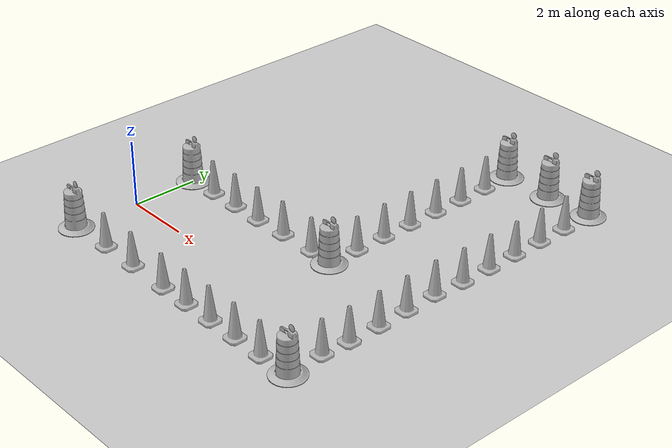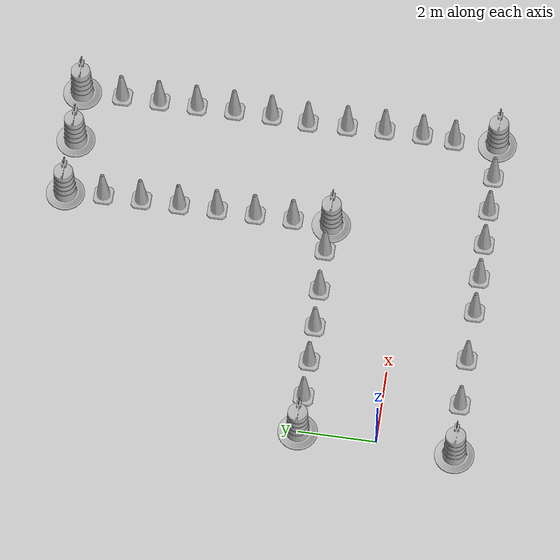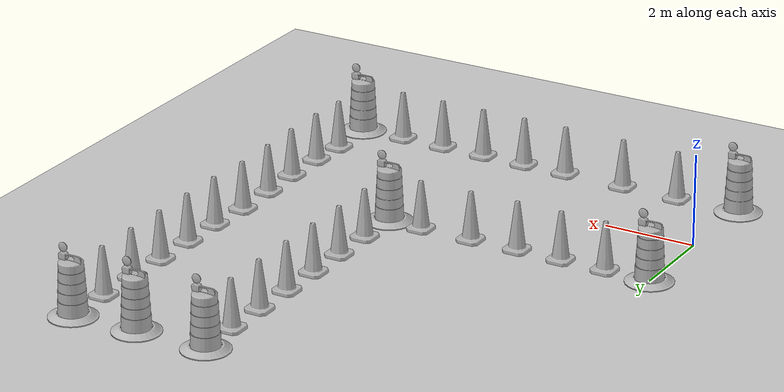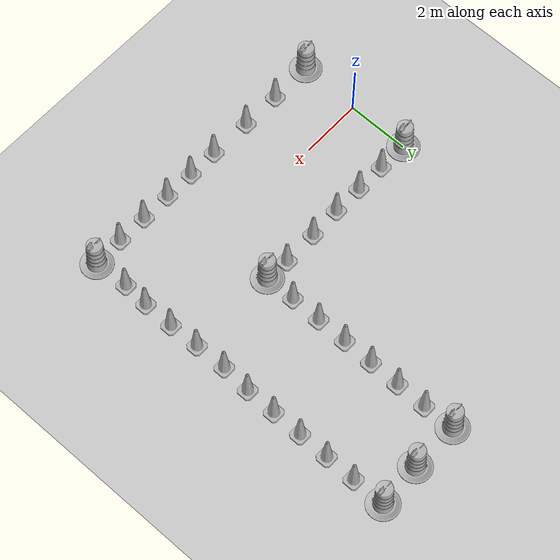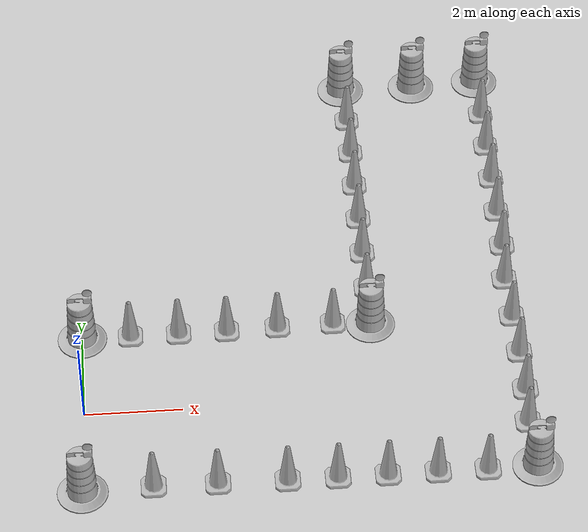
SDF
<sdf version="1.7">
 <world name="default">
  <light name="sun" type="directional">
   <pose>0 0 10 0 -0 0</pose>
   <diffuse>0.8 0.8 0.8 1</diffuse>
   <specular>0.2 0.2 0.2 1</specular>
   <attenuation>
    <range>1000</range>
    <constant>0.9</constant>
    <linear>0.01</linear>
    <quadratic>0.001</quadratic>
   </attenuation>
   <direction>-0.5 0.1 -0.9</direction>
   <spot><inner_angle>0</inner_angle><outer_angle>0</outer_angle><falloff>0</falloff></spot>
  </light>
  <model name="ground_plane">
   <static>1</static>
   <link name="link">
    <collision name="collision">
     <geometry><plane><normal>0 0 1</normal><size>100 100</size></plane></geometry>
     <surface>
      <contact><collide_bitmask>65535</collide_bitmask></contact>
      <friction><ode><mu>100</mu><mu2>50</mu2></ode></friction>
     </surface>
    </collision>
    <visual name="visual">
     <cast_shadows>0</cast_shadows>
     <geometry><plane><normal>0 0 1</normal><size>100 100</size></plane></geometry>
     <material>
      <script><uri>file://media/materials/scripts/gazebo.material</uri><name>Gazebo/Grey</name></script>
     </material>
    </visual>
   </link>
  </model>
  <gravity>0 0 -9.8</gravity>
  <magnetic_field>6e-06 2.3e-05 -4.2e-05</magnetic_field>
  <atmosphere type="adiabatic"/>
  <physics type="ode">
   <max_step_size>0.001</max_step_size>
   <real_time_factor>1</real_time_factor>
   <real_time_update_rate>1000</real_time_update_rate>
  </physics>
  <scene><ambient>0.4 0.4 0.4 1</ambient><background>0.7 0.7 0.7 1</background><shadows>1</shadows></scene>
  <spherical_coordinates>
   <surface_model>EARTH_WGS84</surface_model>
   <latitude_deg>0</latitude_deg>
   <longitude_deg>0</longitude_deg>
   <elevation>0</elevation>
   <heading_deg>0</heading_deg>
  </spherical_coordinates>
  <model name="Construction Barrel">
   <link name="link">
    <inertial>
     <pose>0 0 0.4 0 -0 0</pose>
     <mass>500</mass>
     <inertia><ixx>51.2096</ixx><iyy>51.2096</iyy><izz>25</izz><ixy>0</ixy><ixz>0</ixz><iyz>0</iyz></inertia>
    </inertial>
    <collision name="collision">
     <geometry><mesh><uri>model://construction_barrel/meshes/construction_barrel.dae</uri></mesh></geometry>
    </collision>
    <visual name="visual">
     <geometry><mesh><uri>model://construction_barrel/meshes/construction_barrel.dae</uri></mesh></geometry>
    </visual>
   </link>
   <pose>-0.069041 -1.99433 -0 0 0 -3.9e-05</pose>
  </model>
  <model name="Construction Barrel_clone">
   <link name="link">
    <inertial>
     <pose>0 0 0.4 0 -0 0</pose>
     <mass>500</mass>
     <inertia><ixx>51.2096</ixx><iyy>51.2096</iyy><izz>25</izz><ixy>0</ixy><ixz>0</ixz><iyz>0</iyz></inertia>
    </inertial>
    <collision name="collision">
     <geometry><mesh><uri>model://construction_barrel/meshes/construction_barrel.dae</uri></mesh></geometry>
    </collision>
    <visual name="visual">
     <geometry><mesh><uri>model://construction_barrel/meshes/construction_barrel.dae</uri></mesh></geometry>
    </visual>
   </link>
   <pose>0.000906 2.00754 -1e-06 -3e-06 -1e-06 -3.7e-05</pose>
  </model>
  <model name="Construction Barrel_clone_0">
   <link name="link">
    <inertial>
     <pose>0 0 0.4 0 -0 0</pose>
     <mass>500</mass>
     <inertia><ixx>51.2096</ixx><iyy>51.2096</iyy><izz>25</izz><ixy>0</ixy><ixz>0</ixz><iyz>0</iyz></inertia>
    </inertial>
    <collision name="collision">
     <geometry><mesh><uri>model://construction_barrel/meshes/construction_barrel.dae</uri></mesh></geometry>
    </collision>
    <visual name="visual">
     <geometry><mesh><uri>model://construction_barrel/meshes/construction_barrel.dae</uri></mesh></geometry>
    </visual>
   </link>
   <pose>9.00136 -1.9758 -0 0 0 -4.4e-05</pose>
  </model>
  <model name="Construction Barrel_clone_1">
   <link name="link">
    <inertial>
     <pose>0 0 0.4 0 -0 0</pose>
     <mass>500</mass>
     <inertia><ixx>51.2096</ixx><iyy>51.2096</iyy><izz>25</izz><ixy>0</ixy><ixz>0</ixz><iyz>0</iyz></inertia>
    </inertial>
    <collision name="collision">
     <geometry><mesh><uri>model://construction_barrel/meshes/construction_barrel.dae</uri></mesh></geometry>
    </collision>
    <visual name="visual">
     <geometry><mesh><uri>model://construction_barrel/meshes/construction_barrel.dae</uri></mesh></geometry>
    </visual>
   </link>
   <pose>5.99992 1.99992 -0 0 0 -4e-05</pose>
  </model>
  <model name="Construction Barrel_clone_2">
   <link name="link">
    <inertial>
     <pose>0 0 0.4 0 -0 0</pose>
     <mass>500</mass>
     <inertia><ixx>51.2096</ixx><iyy>51.2096</iyy><izz>25</izz><ixy>0</ixy><ixz>0</ixz><iyz>0</iyz></inertia>
    </inertial>
    <collision name="collision">
     <geometry><mesh><uri>model://construction_barrel/meshes/construction_barrel.dae</uri></mesh></geometry>
    </collision>
    <visual name="visual">
     <geometry><mesh><uri>model://construction_barrel/meshes/construction_barrel.dae</uri></mesh></geometry>
    </visual>
   </link>
   <pose>5.93922 9.0032 -3e-06 0 -1.2e-05 -6.1e-05</pose>
  </model>
  <model name="Construction Barrel_clone_3">
   <link name="link">
    <inertial>
     <pose>0 0 0.4 0 -0 0</pose>
     <mass>500</mass>
     <inertia><ixx>51.2096</ixx><iyy>51.2096</iyy><izz>25</izz><ixy>0</ixy><ixz>0</ixz><iyz>0</iyz></inertia>
    </inertial>
    <collision name="collision">
     <geometry><mesh><uri>model://construction_barrel/meshes/construction_barrel.dae</uri></mesh></geometry>
    </collision>
    <visual name="visual">
     <geometry><mesh><uri>model://construction_barrel/meshes/construction_barrel.dae</uri></mesh></geometry>
    </visual>
   </link>
   <pose>8.97662 9.07061 -0 0 0 -3.7e-05</pose>
  </model>
  <model name="Construction Barrel_clone_4">
   <link name="link">
    <inertial>
     <pose>0 0 0.4 0 -0 0</pose>
     <mass>500</mass>
     <inertia><ixx>51.2096</ixx><iyy>51.2096</iyy><izz>25</izz><ixy>0</ixy><ixz>0</ixz><iyz>0</iyz></inertia>
    </inertial>
    <collision name="collision">
     <geometry><mesh><uri>model://construction_barrel/meshes/construction_barrel.dae</uri></mesh></geometry>
    </collision>
    <visual name="visual">
     <geometry><mesh><uri>model://construction_barrel/meshes/construction_barrel.dae</uri></mesh></geometry>
    </visual>
   </link>
   <pose>7.53302 9.00088 -0 0 0 -4.2e-05</pose>
  </model>
  <model name="Construction Cone">
   <link name="link">
    <collision name="collision">
     <geometry>
      <mesh><scale>10 10 10</scale><uri>model://construction_cone/meshes/construction_cone.dae</uri></mesh>
     </geometry>
    </collision>
    <visual name="visual">
     <geometry>
      <mesh><scale>10 10 10</scale><uri>model://construction_cone/meshes/construction_cone.dae</uri></mesh>
     </geometry>
    </visual>
    <inertial>
     <inertia><ixx>1</ixx><ixy>0</ixy><ixz>0</ixz><iyy>1</iyy><iyz>0</iyz><izz>1</izz></inertia>
     <mass>1</mass>
    </inertial>
   </link>
   <pose>1.33825 -1.96072 -0 0 -1e-06 0</pose>
  </model>
  <model name="Construction Cone_clone">
   <link name="link">
    <collision name="collision">
     <geometry>
      <mesh><scale>10 10 10</scale><uri>model://construction_cone/meshes/construction_cone.dae</uri></mesh>
     </geometry>
    </collision>
    <visual name="visual">
     <geometry>
      <mesh><scale>10 10 10</scale><uri>model://construction_cone/meshes/construction_cone.dae</uri></mesh>
     </geometry>
    </visual>
    <inertial>
     <inertia><ixx>1</ixx><ixy>0</ixy><ixz>0</ixz><iyy>1</iyy><iyz>0</iyz><izz>1</izz></inertia>
     <mass>1</mass>
    </inertial>
   </link>
   <pose>2.61642 -1.97558 -0 0 -1e-06 0</pose>
  </model>
  <model name="Construction Cone_clone_0">
   <link name="link">
    <collision name="collision">
     <geometry>
      <mesh><scale>10 10 10</scale><uri>model://construction_cone/meshes/construction_cone.dae</uri></mesh>
     </geometry>
    </collision>
    <visual name="visual">
     <geometry>
      <mesh><scale>10 10 10</scale><uri>model://construction_cone/meshes/construction_cone.dae</uri></mesh>
     </geometry>
    </visual>
    <inertial>
     <inertia><ixx>1</ixx><ixy>0</ixy><ixz>0</ixz><iyy>1</iyy><iyz>0</iyz><izz>1</izz></inertia>
     <mass>1</mass>
    </inertial>
   </link>
   <pose>4 -2 -0 0 -0 0</pose>
  </model>
  <model name="Construction Cone_clone_1">
   <link name="link">
    <collision name="collision">
     <geometry>
      <mesh><scale>10 10 10</scale><uri>model://construction_cone/meshes/construction_cone.dae</uri></mesh>
     </geometry>
    </collision>
    <visual name="visual">
     <geometry>
      <mesh><scale>10 10 10</scale><uri>model://construction_cone/meshes/construction_cone.dae</uri></mesh>
     </geometry>
    </visual>
    <inertial>
     <inertia><ixx>1</ixx><ixy>0</ixy><ixz>0</ixz><iyy>1</iyy><iyz>0</iyz><izz>1</izz></inertia>
     <mass>1</mass>
    </inertial>
   </link>
   <pose>5 -2 -0 0 -0 0</pose>
  </model>
  <model name="Construction Cone_clone_2">
   <link name="link">
    <collision name="collision">
     <geometry>
      <mesh><scale>10 10 10</scale><uri>model://construction_cone/meshes/construction_cone.dae</uri></mesh>
     </geometry>
    </collision>
    <visual name="visual">
     <geometry>
      <mesh><scale>10 10 10</scale><uri>model://construction_cone/meshes/construction_cone.dae</uri></mesh>
     </geometry>
    </visual>
    <inertial>
     <inertia><ixx>1</ixx><ixy>0</ixy><ixz>0</ixz><iyy>1</iyy><iyz>0</iyz><izz>1</izz></inertia>
     <mass>1</mass>
    </inertial>
   </link>
   <pose>6 -2 -0 0 -1e-06 0</pose>
  </model>
  <model name="Construction Cone_clone_3">
   <link name="link">
    <collision name="collision">
     <geometry>
      <mesh><scale>10 10 10</scale><uri>model://construction_cone/meshes/construction_cone.dae</uri></mesh>
     </geometry>
    </collision>
    <visual name="visual">
     <geometry>
      <mesh><scale>10 10 10</scale><uri>model://construction_cone/meshes/construction_cone.dae</uri></mesh>
     </geometry>
    </visual>
    <inertial>
     <inertia><ixx>1</ixx><ixy>0</ixy><ixz>0</ixz><iyy>1</iyy><iyz>0</iyz><izz>1</izz></inertia>
     <mass>1</mass>
    </inertial>
   </link>
   <pose>7 -2 -0 0 -1e-06 0</pose>
  </model>
  <model name="Construction Cone_clone_4">
   <link name="link">
    <collision name="collision">
     <geometry>
      <mesh><scale>10 10 10</scale><uri>model://construction_cone/meshes/construction_cone.dae</uri></mesh>
     </geometry>
    </collision>
    <visual name="visual">
     <geometry>
      <mesh><scale>10 10 10</scale><uri>model://construction_cone/meshes/construction_cone.dae</uri></mesh>
     </geometry>
    </visual>
    <inertial>
     <inertia><ixx>1</ixx><ixy>0</ixy><ixz>0</ixz><iyy>1</iyy><iyz>0</iyz><izz>1</izz></inertia>
     <mass>1</mass>
    </inertial>
   </link>
   <pose>8 -2 -0 1e-06 -0 0</pose>
  </model>
  <model name="Construction Cone_clone_5">
   <link name="link">
    <collision name="collision">
     <geometry>
      <mesh><scale>10 10 10</scale><uri>model://construction_cone/meshes/construction_cone.dae</uri></mesh>
     </geometry>
    </collision>
    <visual name="visual">
     <geometry>
      <mesh><scale>10 10 10</scale><uri>model://construction_cone/meshes/construction_cone.dae</uri></mesh>
     </geometry>
    </visual>
    <inertial>
     <inertia><ixx>1</ixx><ixy>0</ixy><ixz>0</ixz><iyy>1</iyy><iyz>0</iyz><izz>1</izz></inertia>
     <mass>1</mass>
    </inertial>
   </link>
   <pose>1 2 -8e-06 1e-06 -0 0</pose>
  </model>
  <model name="Construction Cone_clone_6">
   <link name="link">
    <collision name="collision">
     <geometry>
      <mesh><scale>10 10 10</scale><uri>model://construction_cone/meshes/construction_cone.dae</uri></mesh>
     </geometry>
    </collision>
    <visual name="visual">
     <geometry>
      <mesh><scale>10 10 10</scale><uri>model://construction_cone/meshes/construction_cone.dae</uri></mesh>
     </geometry>
    </visual>
    <inertial>
     <inertia><ixx>1</ixx><ixy>0</ixy><ixz>0</ixz><iyy>1</iyy><iyz>0</iyz><izz>1</izz></inertia>
     <mass>1</mass>
    </inertial>
   </link>
   <pose>2 2 -0 0 -1e-06 0</pose>
  </model>
  <model name="Construction Cone_clone_7">
   <link name="link">
    <collision name="collision">
     <geometry>
      <mesh><scale>10 10 10</scale><uri>model://construction_cone/meshes/construction_cone.dae</uri></mesh>
     </geometry>
    </collision>
    <visual name="visual">
     <geometry>
      <mesh><scale>10 10 10</scale><uri>model://construction_cone/meshes/construction_cone.dae</uri></mesh>
     </geometry>
    </visual>
    <inertial>
     <inertia><ixx>1</ixx><ixy>0</ixy><ixz>0</ixz><iyy>1</iyy><iyz>0</iyz><izz>1</izz></inertia>
     <mass>1</mass>
    </inertial>
   </link>
   <pose>3 2 -0 0 -0 0</pose>
  </model>
  <model name="Construction Cone_clone_8">
   <link name="link">
    <collision name="collision">
     <geometry>
      <mesh><scale>10 10 10</scale><uri>model://construction_cone/meshes/construction_cone.dae</uri></mesh>
     </geometry>
    </collision>
    <visual name="visual">
     <geometry>
      <mesh><scale>10 10 10</scale><uri>model://construction_cone/meshes/construction_cone.dae</uri></mesh>
     </geometry>
    </visual>
    <inertial>
     <inertia><ixx>1</ixx><ixy>0</ixy><ixz>0</ixz><iyy>1</iyy><iyz>0</iyz><izz>1</izz></inertia>
     <mass>1</mass>
    </inertial>
   </link>
   <pose>4.0574 2.03187 -0 0 -1e-06 0</pose>
  </model>
  <model name="Construction Cone_clone_9">
   <link name="link">
    <collision name="collision">
     <geometry>
      <mesh><scale>10 10 10</scale><uri>model://construction_cone/meshes/construction_cone.dae</uri></mesh>
     </geometry>
    </collision>
    <visual name="visual">
     <geometry>
      <mesh><scale>10 10 10</scale><uri>model://construction_cone/meshes/construction_cone.dae</uri></mesh>
     </geometry>
    </visual>
    <inertial>
     <inertia><ixx>1</ixx><ixy>0</ixy><ixz>0</ixz><iyy>1</iyy><iyz>0</iyz><izz>1</izz></inertia>
     <mass>1</mass>
    </inertial>
   </link>
   <pose>5.21621 2.0547 -0 0 -1e-06 0</pose>
  </model>
  <model name="Construction Cone_clone_10">
   <link name="link">
    <collision name="collision">
     <geometry>
      <mesh><scale>10 10 10</scale><uri>model://construction_cone/meshes/construction_cone.dae</uri></mesh>
     </geometry>
    </collision>
    <visual name="visual">
     <geometry>
      <mesh><scale>10 10 10</scale><uri>model://construction_cone/meshes/construction_cone.dae</uri></mesh>
     </geometry>
    </visual>
    <inertial>
     <inertia><ixx>1</ixx><ixy>0</ixy><ixz>0</ixz><iyy>1</iyy><iyz>0</iyz><izz>1</izz></inertia>
     <mass>1</mass>
    </inertial>
   </link>
   <pose>8.94826 -0.849963 -0 0 -0 0</pose>
  </model>
  <model name="Construction Cone_clone_11">
   <link name="link">
    <collision name="collision">
     <geometry>
      <mesh><scale>10 10 10</scale><uri>model://construction_cone/meshes/construction_cone.dae</uri></mesh>
     </geometry>
    </collision>
    <visual name="visual">
     <geometry>
      <mesh><scale>10 10 10</scale><uri>model://construction_cone/meshes/construction_cone.dae</uri></mesh>
     </geometry>
    </visual>
    <inertial>
     <inertia><ixx>1</ixx><ixy>0</ixy><ixz>0</ixz><iyy>1</iyy><iyz>0</iyz><izz>1</izz></inertia>
     <mass>1</mass>
    </inertial>
   </link>
   <pose>9 0 -0 0 -0 0</pose>
  </model>
  <model name="Construction Cone_clone_12">
   <link name="link">
    <collision name="collision">
     <geometry>
      <mesh><scale>10 10 10</scale><uri>model://construction_cone/meshes/construction_cone.dae</uri></mesh>
     </geometry>
    </collision>
    <visual name="visual">
     <geometry>
      <mesh><scale>10 10 10</scale><uri>model://construction_cone/meshes/construction_cone.dae</uri></mesh>
     </geometry>
    </visual>
    <inertial>
     <inertia><ixx>1</ixx><ixy>0</ixy><ixz>0</ixz><iyy>1</iyy><iyz>0</iyz><izz>1</izz></inertia>
     <mass>1</mass>
    </inertial>
   </link>
   <pose>9 1 -0 0 -0 0</pose>
  </model>
  <model name="Construction Cone_clone_13">
   <link name="link">
    <collision name="collision">
     <geometry>
      <mesh><scale>10 10 10</scale><uri>model://construction_cone/meshes/construction_cone.dae</uri></mesh>
     </geometry>
    </collision>
    <visual name="visual">
     <geometry>
      <mesh><scale>10 10 10</scale><uri>model://construction_cone/meshes/construction_cone.dae</uri></mesh>
     </geometry>
    </visual>
    <inertial>
     <inertia><ixx>1</ixx><ixy>0</ixy><ixz>0</ixz><iyy>1</iyy><iyz>0</iyz><izz>1</izz></inertia>
     <mass>1</mass>
    </inertial>
   </link>
   <pose>8.96513 1.99234 -0 0 -1e-06 0</pose>
  </model>
  <model name="Construction Cone_clone_14">
   <link name="link">
    <collision name="collision">
     <geometry>
      <mesh><scale>10 10 10</scale><uri>model://construction_cone/meshes/construction_cone.dae</uri></mesh>
     </geometry>
    </collision>
    <visual name="visual">
     <geometry>
      <mesh><scale>10 10 10</scale><uri>model://construction_cone/meshes/construction_cone.dae</uri></mesh>
     </geometry>
    </visual>
    <inertial>
     <inertia><ixx>1</ixx><ixy>0</ixy><ixz>0</ixz><iyy>1</iyy><iyz>0</iyz><izz>1</izz></inertia>
     <mass>1</mass>
    </inertial>
   </link>
   <pose>8.93405 3.03234 -0 -0 -0 -0</pose>
  </model>
  <model name="Construction Cone_clone_15">
   <link name="link">
    <collision name="collision">
     <geometry>
      <mesh><scale>10 10 10</scale><uri>model://construction_cone/meshes/construction_cone.dae</uri></mesh>
     </geometry>
    </collision>
    <visual name="visual">
     <geometry>
      <mesh><scale>10 10 10</scale><uri>model://construction_cone/meshes/construction_cone.dae</uri></mesh>
     </geometry>
    </visual>
    <inertial>
     <inertia><ixx>1</ixx><ixy>0</ixy><ixz>0</ixz><iyy>1</iyy><iyz>0</iyz><izz>1</izz></inertia>
     <mass>1</mass>
    </inertial>
   </link>
   <pose>9 4 -0 -0 -0 -0</pose>
  </model>
  <model name="Construction Cone_clone_16">
   <link name="link">
    <collision name="collision">
     <geometry>
      <mesh><scale>10 10 10</scale><uri>model://construction_cone/meshes/construction_cone.dae</uri></mesh>
     </geometry>
    </collision>
    <visual name="visual">
     <geometry>
      <mesh><scale>10 10 10</scale><uri>model://construction_cone/meshes/construction_cone.dae</uri></mesh>
     </geometry>
    </visual>
    <inertial>
     <inertia><ixx>1</ixx><ixy>0</ixy><ixz>0</ixz><iyy>1</iyy><iyz>0</iyz><izz>1</izz></inertia>
     <mass>1</mass>
    </inertial>
   </link>
   <pose>9 5 -0 0 -1e-06 0</pose>
  </model>
  <model name="Construction Cone_clone_17">
   <link name="link">
    <collision name="collision">
     <geometry>
      <mesh><scale>10 10 10</scale><uri>model://construction_cone/meshes/construction_cone.dae</uri></mesh>
     </geometry>
    </collision>
    <visual name="visual">
     <geometry>
      <mesh><scale>10 10 10</scale><uri>model://construction_cone/meshes/construction_cone.dae</uri></mesh>
     </geometry>
    </visual>
    <inertial>
     <inertia><ixx>1</ixx><ixy>0</ixy><ixz>0</ixz><iyy>1</iyy><iyz>0</iyz><izz>1</izz></inertia>
     <mass>1</mass>
    </inertial>
   </link>
   <pose>9 6 -0 0 -0 0</pose>
  </model>
  <model name="Construction Cone_clone_18">
   <link name="link">
    <collision name="collision">
     <geometry>
      <mesh><scale>10 10 10</scale><uri>model://construction_cone/meshes/construction_cone.dae</uri></mesh>
     </geometry>
    </collision>
    <visual name="visual">
     <geometry>
      <mesh><scale>10 10 10</scale><uri>model://construction_cone/meshes/construction_cone.dae</uri></mesh>
     </geometry>
    </visual>
    <inertial>
     <inertia><ixx>1</ixx><ixy>0</ixy><ixz>0</ixz><iyy>1</iyy><iyz>0</iyz><izz>1</izz></inertia>
     <mass>1</mass>
    </inertial>
   </link>
   <pose>9 7 -1e-05 -0 -0 -0</pose>
  </model>
  <model name="Construction Cone_clone_19">
   <link name="link">
    <collision name="collision">
     <geometry>
      <mesh><scale>10 10 10</scale><uri>model://construction_cone/meshes/construction_cone.dae</uri></mesh>
     </geometry>
    </collision>
    <visual name="visual">
     <geometry>
      <mesh><scale>10 10 10</scale><uri>model://construction_cone/meshes/construction_cone.dae</uri></mesh>
     </geometry>
    </visual>
    <inertial>
     <inertia><ixx>1</ixx><ixy>0</ixy><ixz>0</ixz><iyy>1</iyy><iyz>0</iyz><izz>1</izz></inertia>
     <mass>1</mass>
    </inertial>
   </link>
   <pose>9 8 -0 0 -1e-06 0</pose>
  </model>
  <model name="Construction Cone_clone_20">
   <link name="link">
    <collision name="collision">
     <geometry>
      <mesh><scale>10 10 10</scale><uri>model://construction_cone/meshes/construction_cone.dae</uri></mesh>
     </geometry>
    </collision>
    <visual name="visual">
     <geometry>
      <mesh><scale>10 10 10</scale><uri>model://construction_cone/meshes/construction_cone.dae</uri></mesh>
     </geometry>
    </visual>
    <inertial>
     <inertia><ixx>1</ixx><ixy>0</ixy><ixz>0</ixz><iyy>1</iyy><iyz>0</iyz><izz>1</izz></inertia>
     <mass>1</mass>
    </inertial>
   </link>
   <pose>6 3 -1e-05 -1e-06 0 0</pose>
  </model>
  <model name="Construction Cone_clone_21">
   <link name="link">
    <collision name="collision">
     <geometry>
      <mesh><scale>10 10 10</scale><uri>model://construction_cone/meshes/construction_cone.dae</uri></mesh>
     </geometry>
    </collision>
    <visual name="visual">
     <geometry>
      <mesh><scale>10 10 10</scale><uri>model://construction_cone/meshes/construction_cone.dae</uri></mesh>
     </geometry>
    </visual>
    <inertial>
     <inertia><ixx>1</ixx><ixy>0</ixy><ixz>0</ixz><iyy>1</iyy><iyz>0</iyz><izz>1</izz></inertia>
     <mass>1</mass>
    </inertial>
   </link>
   <pose>6 4 0 -0 -0 -0</pose>
  </model>
  <model name="Construction Cone_clone_22">
   <link name="link">
    <collision name="collision">
     <geometry>
      <mesh><scale>10 10 10</scale><uri>model://construction_cone/meshes/construction_cone.dae</uri></mesh>
     </geometry>
    </collision>
    <visual name="visual">
     <geometry>
      <mesh><scale>10 10 10</scale><uri>model://construction_cone/meshes/construction_cone.dae</uri></mesh>
     </geometry>
    </visual>
    <inertial>
     <inertia><ixx>1</ixx><ixy>0</ixy><ixz>0</ixz><iyy>1</iyy><iyz>0</iyz><izz>1</izz></inertia>
     <mass>1</mass>
    </inertial>
   </link>
   <pose>6 5 -0 0 -1e-06 0</pose>
  </model>
  <model name="Construction Cone_clone_23">
   <link name="link">
    <collision name="collision">
     <geometry>
      <mesh><scale>10 10 10</scale><uri>model://construction_cone/meshes/construction_cone.dae</uri></mesh>
     </geometry>
    </collision>
    <visual name="visual">
     <geometry>
      <mesh><scale>10 10 10</scale><uri>model://construction_cone/meshes/construction_cone.dae</uri></mesh>
     </geometry>
    </visual>
    <inertial>
     <inertia><ixx>1</ixx><ixy>0</ixy><ixz>0</ixz><iyy>1</iyy><iyz>0</iyz><izz>1</izz></inertia>
     <mass>1</mass>
    </inertial>
   </link>
   <pose>6 6 -0 0 -1e-06 0</pose>
  </model>
  <model name="Construction Cone_clone_24">
   <link name="link">
    <collision name="collision">
     <geometry>
      <mesh><scale>10 10 10</scale><uri>model://construction_cone/meshes/construction_cone.dae</uri></mesh>
     </geometry>
    </collision>
    <visual name="visual">
     <geometry>
      <mesh><scale>10 10 10</scale><uri>model://construction_cone/meshes/construction_cone.dae</uri></mesh>
     </geometry>
    </visual>
    <inertial>
     <inertia><ixx>1</ixx><ixy>0</ixy><ixz>0</ixz><iyy>1</iyy><iyz>0</iyz><izz>1</izz></inertia>
     <mass>1</mass>
    </inertial>
   </link>
   <pose>6 7 -0 0 -0 0</pose>
  </model>
  <model name="Construction Cone_clone_25">
   <link name="link">
    <collision name="collision">
     <geometry>
      <mesh><scale>10 10 10</scale><uri>model://construction_cone/meshes/construction_cone.dae</uri></mesh>
     </geometry>
    </collision>
    <visual name="visual">
     <geometry>
      <mesh><scale>10 10 10</scale><uri>model://construction_cone/meshes/construction_cone.dae</uri></mesh>
     </geometry>
    </visual>
    <inertial>
     <inertia><ixx>1</ixx><ixy>0</ixy><ixz>0</ixz><iyy>1</iyy><iyz>0</iyz><izz>1</izz></inertia>
     <mass>1</mass>
    </inertial>
   </link>
   <pose>6 8 -0 0 -1e-06 0</pose>
  </model>
 </world>
</sdf>
